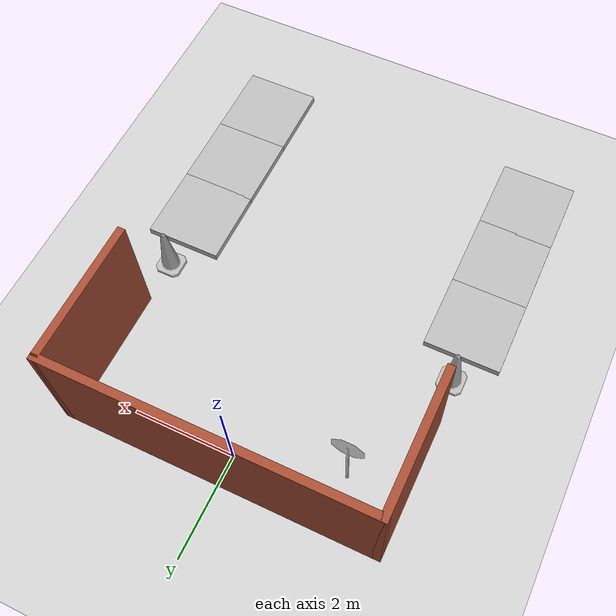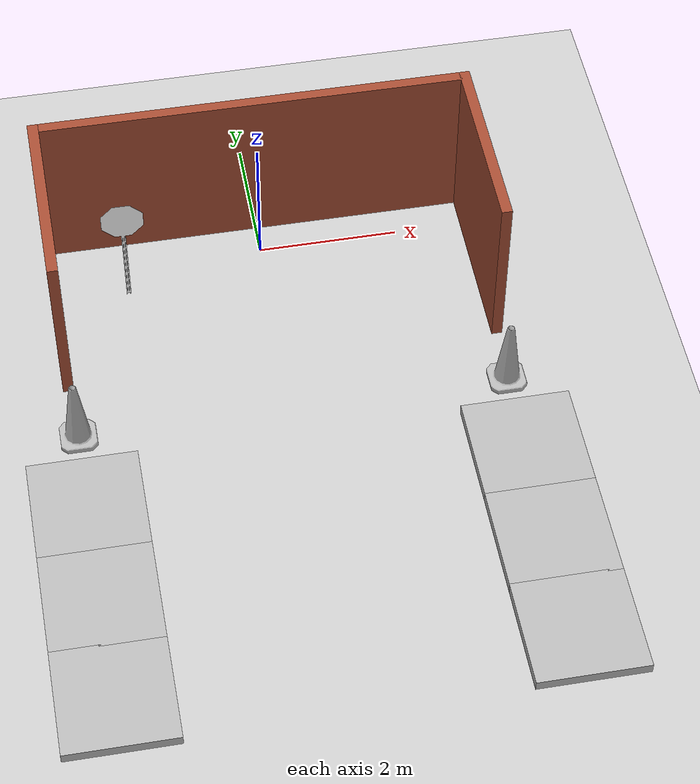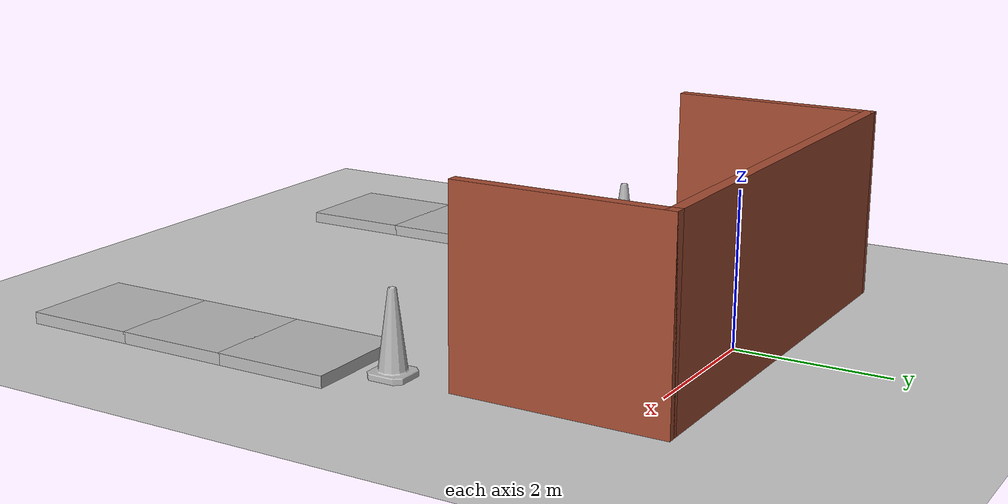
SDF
<sdf version="1.7">
 <world name="default">
  <light name="sun" type="directional">
   <pose>0 0 10 0 -0 0</pose>
   <diffuse>0.8 0.8 0.8 1</diffuse>
   <specular>0.2 0.2 0.2 1</specular>
   <attenuation>
    <range>1000</range>
    <constant>0.9</constant>
    <linear>0.01</linear>
    <quadratic>0.001</quadratic>
   </attenuation>
   <direction>-0.5 0.1 -0.9</direction>
   <spot><inner_angle>0</inner_angle><outer_angle>0</outer_angle><falloff>0</falloff></spot>
  </light>
  <model name="ground_plane">
   <static>1</static>
   <link name="link">
    <collision name="collision">
     <geometry><plane><normal>0 0 1</normal><size>100 100</size></plane></geometry>
     <surface><friction><ode><mu>100</mu><mu2>50</mu2></ode></friction></surface>
    </collision>
    <visual name="visual">
     <cast_shadows>0</cast_shadows>
     <geometry><plane><normal>0 0 1</normal><size>100 100</size></plane></geometry>
     <material>
      <script><uri>file://media/materials/scripts/gazebo.material</uri><name>Gazebo/Grey</name></script>
     </material>
    </visual>
   </link>
  </model>
  <gravity>0 0 -9.8</gravity>
  <magnetic_field>6e-06 2.3e-05 -4.2e-05</magnetic_field>
  <atmosphere type="adiabatic"/>
  <physics type="ode">
   <max_step_size>0.001</max_step_size>
   <real_time_factor>1</real_time_factor>
   <real_time_update_rate>1000</real_time_update_rate>
  </physics>
  <scene><ambient>0.4 0.4 0.4 1</ambient><background>0.7 0.7 0.7 1</background><shadows>1</shadows></scene>
  <audio><device>default</device></audio>
  <spherical_coordinates>
   <surface_model>EARTH_WGS84</surface_model>
   <latitude_deg>0</latitude_deg>
   <longitude_deg>0</longitude_deg>
   <elevation>0</elevation>
   <heading_deg>0</heading_deg>
  </spherical_coordinates>
  <model name="MyBuilding">
   <link name="Wall_0">
    <collision name="Wall_0_Collision">
     <geometry><box><size>6.25 0.15 2.5</size></box></geometry>
     <pose>0 0 1.25 0 -0 0</pose>
    </collision>
    <visual name="Wall_0_Visual">
     <pose>0 0 1.25 0 -0 0</pose>
     <geometry><box><size>6.25 0.15 2.5</size></box></geometry>
     <material>
      <script><uri>file://media/materials/scripts/gazebo.material</uri><name>Gazebo/Bricks</name></script>
      <ambient>1 1 1 1</ambient>
     </material>
     <meta><layer>0</layer></meta>
    </visual>
    <pose>0 0.5175 0 0 -0 0</pose>
   </link>
   <link name="Wall_1">
    <collision name="Wall_1_Collision">
     <geometry><box><size>2.75 0.15 2.5</size></box></geometry>
     <pose>0 0 1.25 0 -0 0</pose>
    </collision>
    <visual name="Wall_1_Visual">
     <pose>0 0 1.25 0 -0 0</pose>
     <geometry><box><size>2.75 0.15 2.5</size></box></geometry>
     <material>
      <script><uri>file://media/materials/scripts/gazebo.material</uri><name>Gazebo/Bricks</name></script>
      <ambient>1 1 1 1</ambient>
     </material>
     <meta><layer>0</layer></meta>
    </visual>
    <pose>3.05 -0.7825 0 0 -0 -1.5708</pose>
   </link>
   <link name="Wall_4">
    <collision name="Wall_4_Collision">
     <geometry><box><size>2.75 0.15 2.5</size></box></geometry>
     <pose>0 0 1.25 0 -0 0</pose>
    </collision>
    <visual name="Wall_4_Visual">
     <pose>0 0 1.25 0 -0 0</pose>
     <geometry><box><size>2.75 0.15 2.5</size></box></geometry>
     <material>
      <script><uri>file://media/materials/scripts/gazebo.material</uri><name>Gazebo/Bricks</name></script>
      <ambient>1 1 1 1</ambient>
     </material>
     <meta><layer>0</layer></meta>
    </visual>
    <pose>-3.05 -0.7825 0 0 -0 -1.5708</pose>
   </link>
   <static>1</static>
  </model>
  <model name="Construction Cone">
   <link name="link">
    <collision name="collision">
     <geometry>
      <mesh><scale>10 10 10</scale><uri>model://construction_cone/meshes/construction_cone.dae</uri></mesh>
     </geometry>
    </collision>
    <visual name="visual">
     <geometry>
      <mesh><scale>10 10 10</scale><uri>model://construction_cone/meshes/construction_cone.dae</uri></mesh>
     </geometry>
    </visual>
    <inertial>
     <inertia><ixx>1</ixx><ixy>0</ixy><ixz>0</ixz><iyy>1</iyy><iyz>0</iyz><izz>1</izz></inertia>
     <mass>1</mass>
    </inertial>
   </link>
   <pose>-3 -3 -0 0 -1e-06 0</pose>
  </model>
  <model name="Construction Cone_clone">
   <link name="link">
    <collision name="collision">
     <geometry>
      <mesh><scale>10 10 10</scale><uri>model://construction_cone/meshes/construction_cone.dae</uri></mesh>
     </geometry>
    </collision>
    <visual name="visual">
     <geometry>
      <mesh><scale>10 10 10</scale><uri>model://construction_cone/meshes/construction_cone.dae</uri></mesh>
     </geometry>
    </visual>
    <inertial>
     <inertia><ixx>1</ixx><ixy>0</ixy><ixz>0</ixz><iyy>1</iyy><iyz>0</iyz><izz>1</izz></inertia>
     <mass>1</mass>
    </inertial>
   </link>
   <pose>3 -3 -0 0 -1e-06 0</pose>
  </model>
  <model name="walkway_metal_straight">
   <static>1</static>
   <link name="link">
    <collision name="collision">
     <pose>0 0.762 0.076075 0 -0 0</pose>
     <geometry><box><size>1.524 1.524 0.15215</size></box></geometry>
    </collision>
    <visual name="visual">
     <geometry>
      <mesh><scale>0.001 0.001 0.001</scale><uri>model://walkway_metal_straight/meshes/mesh.obj</uri></mesh>
     </geometry>
    </visual>
   </link>
   <pose>-3 -5 0 0 -0 0</pose>
  </model>
  <model name="Stop Sign">
   <static>1</static>
   <link name="link">
    <collision name="collision">
     <geometry><mesh><uri>model://stop_sign/meshes/stop_sign.dae</uri></mesh></geometry>
    </collision>
    <visual name="visual">
     <geometry><mesh><uri>model://stop_sign/meshes/stop_sign.dae</uri></mesh></geometry>
     <material>
      <script>
       <uri>model://stop_sign/materials/scripts</uri>
       <uri>model://stop_sign/materials/textures</uri>
       <name>StopSign/Diffuse</name>
      </script>
     </material>
    </visual>
   </link>
   <pose>-2 -0.5 0 0 -0 0</pose>
  </model>
  <model name="walkway_metal_straight_clone">
   <static>1</static>
   <link name="link">
    <collision name="collision">
     <pose>0 0.762 0.076075 0 -0 0</pose>
     <geometry><box><size>1.524 1.524 0.15215</size></box></geometry>
    </collision>
    <visual name="visual">
     <geometry>
      <mesh><scale>0.001 0.001 0.001</scale><uri>model://walkway_metal_straight/meshes/mesh.obj</uri></mesh>
     </geometry>
    </visual>
   </link>
   <pose>-3 -6.5 0 0 -0 0</pose>
  </model>
  <model name="walkway_metal_straight_clone_clone">
   <static>1</static>
   <link name="link">
    <collision name="collision">
     <pose>0 0.762 0.076075 0 -0 0</pose>
     <geometry><box><size>1.524 1.524 0.15215</size></box></geometry>
    </collision>
    <visual name="visual">
     <geometry>
      <mesh><scale>0.001 0.001 0.001</scale><uri>model://walkway_metal_straight/meshes/mesh.obj</uri></mesh>
     </geometry>
    </visual>
   </link>
   <pose>-3 -8 0 0 -0 0</pose>
  </model>
  <model name="walkway_metal_straight_clone_0">
   <static>1</static>
   <link name="link">
    <collision name="collision">
     <pose>0 0.762 0.076075 0 -0 0</pose>
     <geometry><box><size>1.524 1.524 0.15215</size></box></geometry>
    </collision>
    <visual name="visual">
     <geometry>
      <mesh><scale>0.001 0.001 0.001</scale><uri>model://walkway_metal_straight/meshes/mesh.obj</uri></mesh>
     </geometry>
    </visual>
   </link>
   <pose>3 -5 0 0 -0 0</pose>
  </model>
  <model name="walkway_metal_straight_clone_1">
   <static>1</static>
   <link name="link">
    <collision name="collision">
     <pose>0 0.762 0.076075 0 -0 0</pose>
     <geometry><box><size>1.524 1.524 0.15215</size></box></geometry>
    </collision>
    <visual name="visual">
     <geometry>
      <mesh><scale>0.001 0.001 0.001</scale><uri>model://walkway_metal_straight/meshes/mesh.obj</uri></mesh>
     </geometry>
    </visual>
   </link>
   <pose>3 -6.5 0 0 -0 0</pose>
  </model>
  <model name="walkway_metal_straight_clone_2">
   <static>1</static>
   <link name="link">
    <collision name="collision">
     <pose>0 0.762 0.076075 0 -0 0</pose>
     <geometry><box><size>1.524 1.524 0.15215</size></box></geometry>
    </collision>
    <visual name="visual">
     <geometry>
      <mesh><scale>0.001 0.001 0.001</scale><uri>model://walkway_metal_straight/meshes/mesh.obj</uri></mesh>
     </geometry>
    </visual>
   </link>
   <pose>3 -8 0 0 -0 0</pose>
  </model>
 </world>
</sdf>
